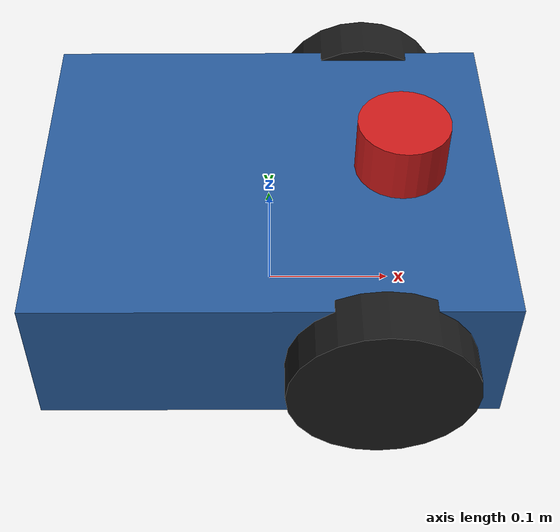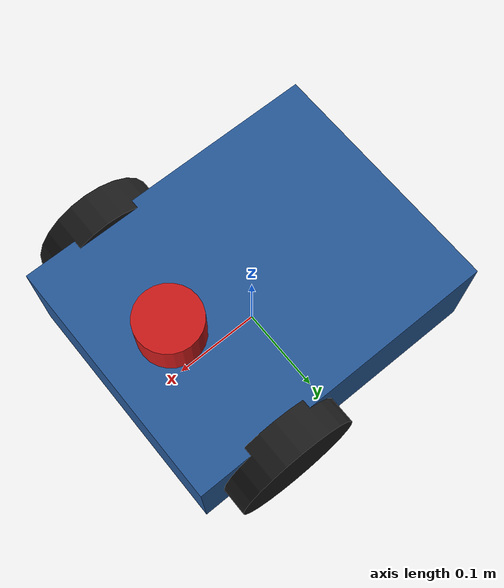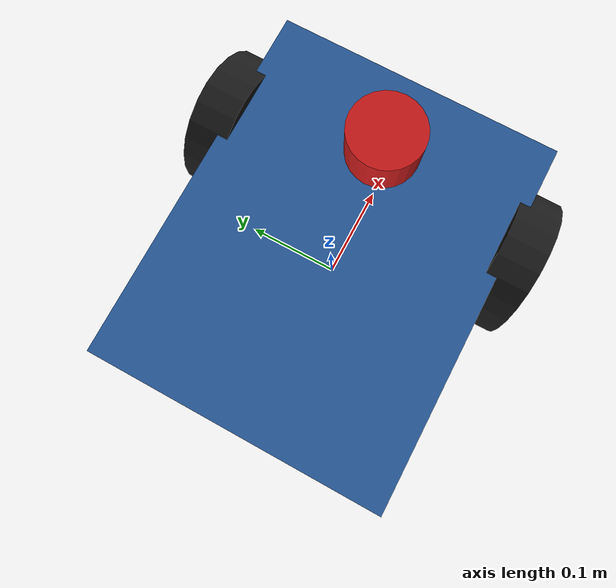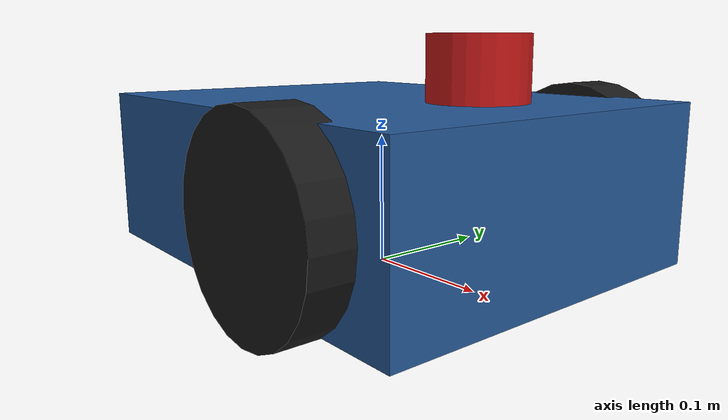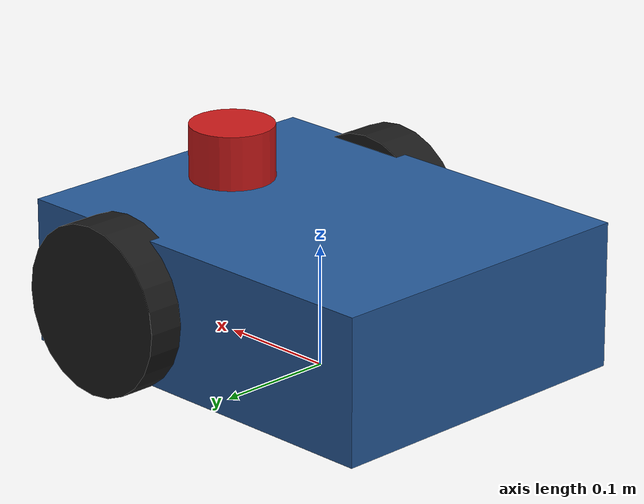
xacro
<?xml version="1.0"?>
<robot name="ugv" xmlns:xacro="http://www.ros.org/wiki/xacro">

  <xacro:arg name="namespace" default="robot1"/>
  <xacro:arg name="prefix" default="robot1/"/>

  <xacro:property name="ns" value="$(arg namespace)"/>
  <xacro:property name="pf" value="$(arg prefix)"/>

  <!-- Geometry -->
  <xacro:property name="base_x" value="0.35"/>
  <xacro:property name="base_y" value="0.28"/>
  <xacro:property name="base_z" value="0.12"/>
  <xacro:property name="base_mass" value="6.0"/>

  <xacro:property name="wheel_radius" value="0.070"/>
  <xacro:property name="wheel_width" value="0.040"/>
  <xacro:property name="wheel_mass" value="0.4"/>
  <xacro:property name="wheel_separation" value="0.30"/>
  <xacro:property name="wheel_xoff" value="0.08"/>

  <xacro:property name="caster_radius" value="0.030"/>
  <xacro:property name="caster_xoff" value="-0.12"/>

  <!-- base_footprint sits on the ground plane; chassis floats above it -->
  <xacro:property name="base_zoff" value="${wheel_radius}"/>

  <xacro:macro name="box_inertia" params="m x y z">
    <inertial>
      <mass value="${m}"/>
      <inertia ixx="${m*(y*y+z*z)/12.0}" ixy="0.0" ixz="0.0"
               iyy="${m*(x*x+z*z)/12.0}" iyz="0.0"
               izz="${m*(x*x+y*y)/12.0}"/>
    </inertial>
  </xacro:macro>

  <xacro:macro name="cylinder_inertia" params="m r l">
    <inertial>
      <mass value="${m}"/>
      <inertia ixx="${m*(3*r*r+l*l)/12.0}" ixy="0.0" ixz="0.0"
               iyy="${m*(3*r*r+l*l)/12.0}" iyz="0.0"
               izz="${m*r*r/2.0}"/>
    </inertial>
  </xacro:macro>

  <xacro:macro name="sphere_inertia" params="m r">
    <inertial>
      <mass value="${m}"/>
      <inertia ixx="${2*m*r*r/5.0}" ixy="0.0" ixz="0.0"
               iyy="${2*m*r*r/5.0}" iyz="0.0"
               izz="${2*m*r*r/5.0}"/>
    </inertial>
  </xacro:macro>

  <!-- ================= links ================= -->

  <link name="${pf}base_footprint"/>

  <link name="${pf}base_link">
    <visual>
      <geometry><box size="${base_x} ${base_y} ${base_z}"/></geometry>
      <material name="chassis"><color rgba="0.15 0.35 0.60 1.0"/></material>
    </visual>
    <collision>
      <geometry><box size="${base_x} ${base_y} ${base_z}"/></geometry>
    </collision>
    <xacro:box_inertia m="${base_mass}" x="${base_x}" y="${base_y}" z="${base_z}"/>
  </link>

  <joint name="${pf}base_joint" type="fixed">
    <parent link="${pf}base_footprint"/>
    <child link="${pf}base_link"/>
    <origin xyz="0 0 ${base_zoff}" rpy="0 0 0"/>
  </joint>

  <xacro:macro name="wheel" params="side reflect">
    <link name="${pf}${side}_wheel_link">
      <visual>
        <origin xyz="0 0 0" rpy="1.5707963 0 0"/>
        <geometry><cylinder radius="${wheel_radius}" length="${wheel_width}"/></geometry>
        <material name="wheel"><color rgba="0.1 0.1 0.1 1.0"/></material>
      </visual>
      <collision>
        <origin xyz="0 0 0" rpy="1.5707963 0 0"/>
        <geometry><cylinder radius="${wheel_radius}" length="${wheel_width}"/></geometry>
      </collision>
      <xacro:cylinder_inertia m="${wheel_mass}" r="${wheel_radius}" l="${wheel_width}"/>
    </link>

    <joint name="${pf}${side}_wheel_joint" type="continuous">
      <parent link="${pf}base_link"/>
      <child link="${pf}${side}_wheel_link"/>
      <origin xyz="${wheel_xoff} ${reflect*wheel_separation/2.0} ${-base_zoff+wheel_radius}"
              rpy="0 0 0"/>
      <axis xyz="0 1 0"/>
    </joint>

    <gazebo reference="${pf}${side}_wheel_link">
      <mu1>1.0</mu1>
      <mu2>1.0</mu2>
      <material>Gazebo/Black</material>
    </gazebo>
  </xacro:macro>

  <xacro:wheel side="left"  reflect="1"/>
  <xacro:wheel side="right" reflect="-1"/>

  <link name="${pf}caster_link">
    <visual>
      <geometry><sphere radius="${caster_radius}"/></geometry>
      <material name="caster"><color rgba="0.3 0.3 0.3 1.0"/></material>
    </visual>
    <collision>
      <geometry><sphere radius="${caster_radius}"/></geometry>
    </collision>
    <xacro:sphere_inertia m="0.2" r="${caster_radius}"/>
  </link>

  <joint name="${pf}caster_joint" type="fixed">
    <parent link="${pf}base_link"/>
    <child link="${pf}caster_link"/>
    <origin xyz="${caster_xoff} 0 ${-base_zoff+caster_radius}" rpy="0 0 0"/>
  </joint>

  <gazebo reference="${pf}caster_link">
    <mu1>0.0</mu1>
    <mu2>0.0</mu2>
    <material>Gazebo/Grey</material>
  </gazebo>

  <link name="${pf}base_scan">
    <visual>
      <geometry><cylinder radius="0.035" length="0.045"/></geometry>
      <material name="lidar"><color rgba="0.8 0.1 0.1 1.0"/></material>
    </visual>
    <collision>
      <geometry><cylinder radius="0.035" length="0.045"/></geometry>
    </collision>
    <xacro:cylinder_inertia m="0.12" r="0.035" l="0.045"/>
  </link>

  <joint name="${pf}scan_joint" type="fixed">
    <parent link="${pf}base_link"/>
    <child link="${pf}base_scan"/>
    <origin xyz="0.10 0 ${base_z/2.0+0.025}" rpy="0 0 0"/>
  </joint>

  <gazebo reference="${pf}base_link">
    <material>Gazebo/Blue</material>
  </gazebo>

  <!-- ================= gazebo plugins ================= -->

  <!-- 2D lidar. Plain CPU ray (not gpu_ray) so the testbed runs headless and
       on machines without a usable GL context. -->
  <gazebo reference="${pf}base_scan">
    <material>Gazebo/Red</material>
    <sensor name="${ns}_lidar" type="ray">
      <pose>0 0 0 0 0 0</pose>
      <visualize>false</visualize>
      <update_rate>15.0</update_rate>
      <ray>
        <scan>
          <horizontal>
            <samples>360</samples>
            <resolution>1.0</resolution>
            <min_angle>-3.1415926</min_angle>
            <max_angle>3.1415926</max_angle>
          </horizontal>
        </scan>
        <range>
          <min>0.15</min>
          <max>8.0</max>
          <resolution>0.015</resolution>
        </range>
        <noise>
          <type>gaussian</type>
          <mean>0.0</mean>
          <stddev>0.01</stddev>
        </noise>
      </ray>
      <plugin name="${ns}_lidar_controller" filename="libgazebo_ros_ray_sensor.so">
        <ros>
          <namespace>/${ns}</namespace>
          <remapping>~/out:=scan</remapping>
        </ros>
        <output_type>sensor_msgs/LaserScan</output_type>
        <frame_name>${pf}base_scan</frame_name>
      </plugin>
    </sensor>
  </gazebo>

  <!-- Differential drive. Publishes odom + the odom->base_footprint TF on the
       global /tf (tf2 broadcasters always use the absolute topic), which is why
       every frame carries the ${pf} prefix. -->
  <gazebo>
    <plugin name="${ns}_diff_drive" filename="libgazebo_ros_diff_drive.so">
      <ros>
        <namespace>/${ns}</namespace>
        <remapping>cmd_vel:=cmd_vel</remapping>
        <remapping>odom:=odom</remapping>
      </ros>
      <update_rate>30</update_rate>
      <left_joint>${pf}left_wheel_joint</left_joint>
      <right_joint>${pf}right_wheel_joint</right_joint>
      <wheel_separation>${wheel_separation}</wheel_separation>
      <wheel_diameter>${2*wheel_radius}</wheel_diameter>
      <max_wheel_torque>20.0</max_wheel_torque>
      <max_wheel_acceleration>1.5</max_wheel_acceleration>
      <publish_odom>true</publish_odom>
      <publish_odom_tf>true</publish_odom_tf>
      <publish_wheel_tf>false</publish_wheel_tf>
      <odometry_frame>${pf}odom</odometry_frame>
      <robot_base_frame>${pf}base_footprint</robot_base_frame>
      <odometry_source>0</odometry_source>
    </plugin>

    <plugin name="${ns}_joint_states" filename="libgazebo_ros_joint_state_publisher.so">
      <ros>
        <namespace>/${ns}</namespace>
        <remapping>~/out:=joint_states</remapping>
      </ros>
      <update_rate>30</update_rate>
      <joint_name>${pf}left_wheel_joint</joint_name>
      <joint_name>${pf}right_wheel_joint</joint_name>
    </plugin>
  </gazebo>

</robot>
